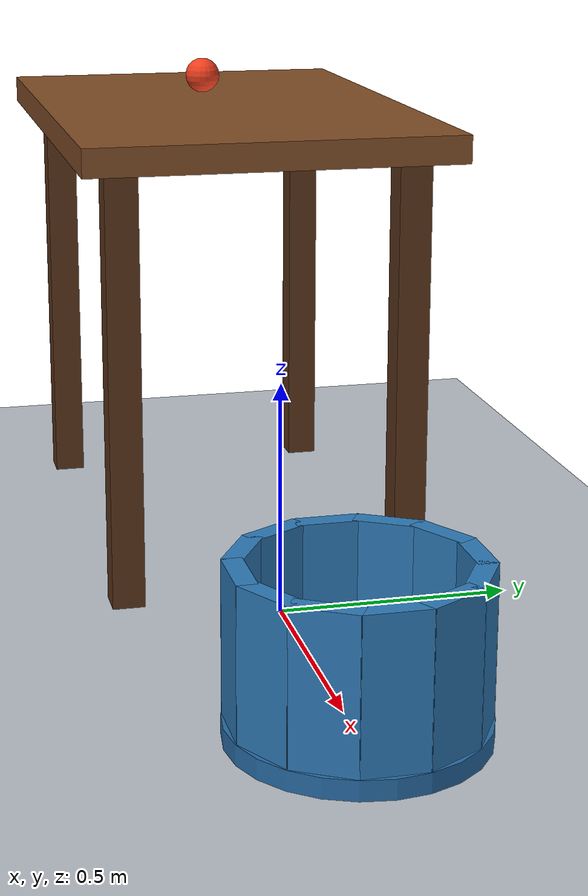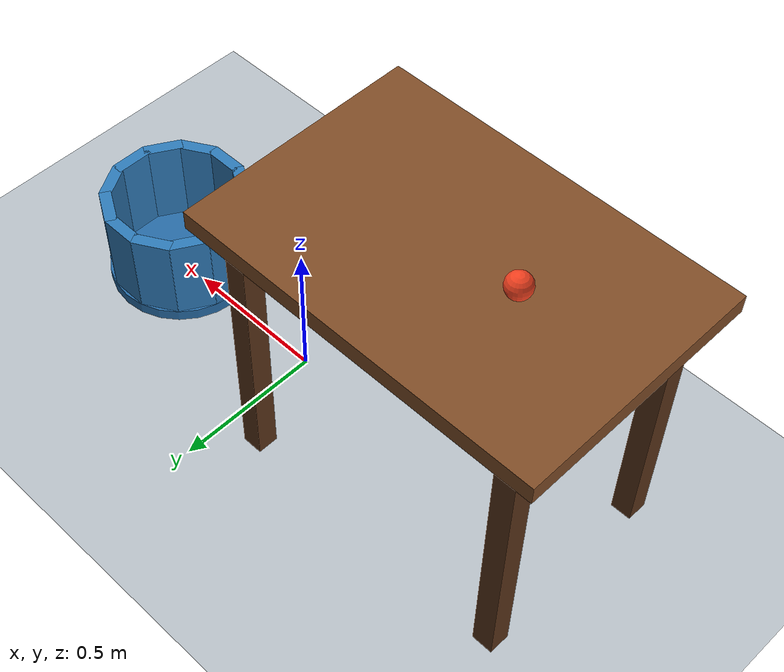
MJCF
<mujoco model="ball_table_bucket">
  <compiler angle="degree"/>
  <option timestep="0.002" gravity="0 0 -9.81" integrator="implicitfast" cone="elliptic" iterations="50"/>
  <statistic center="0 0 0.5" extent="2"/>

  <worldbody>
    <light name="overhead" pos="0 0 3" dir="0 0 -1" diffuse="0.8 0.8 0.8"/>
    <geom name="floor" type="plane" size="3 3 0.1" rgba="0.72 0.75 0.78 1" friction="0.8 0.01 0.005" condim="6"/>

    <!-- The tabletop ends at x = 0 and its upper surface is at z = 1. -->
    <body name="table">
      <geom name="table_top" type="box" pos="-0.6 0 0.97" size="0.6 0.4 0.03" rgba="0.50 0.30 0.15 1" friction="0.8 0.005 0.00005" condim="6" solref="0.01 1"/>
      <geom name="table_leg_1" type="box" pos="-1.08 -0.31 0.47" size="0.035 0.035 0.47" rgba="0.35 0.20 0.10 1"/>
      <geom name="table_leg_2" type="box" pos="-1.08 0.31 0.47" size="0.035 0.035 0.47" rgba="0.35 0.20 0.10 1"/>
      <geom name="table_leg_3" type="box" pos="-0.12 -0.31 0.47" size="0.035 0.035 0.47" rgba="0.35 0.20 0.10 1"/>
      <geom name="table_leg_4" type="box" pos="-0.12 0.31 0.47" size="0.035 0.035 0.47" rgba="0.35 0.20 0.10 1"/>
    </body>

    <!-- An open, watertight polygonal bucket centered 0.60 m beyond the edge. -->
    <body name="bucket" pos="0.6 0 0">
      <geom name="bucket_bottom" type="cylinder" pos="0 0 0.02" size="0.25 0.02" rgba="0.15 0.42 0.65 1" friction="0.9 0.02 0.01" condim="6" solref="0.01 1"/>
      <geom name="bucket_wall_01" type="box" pos="0.22 0 0.19" size="0.02 0.065 0.15" euler="0 0 0" rgba="0.18 0.48 0.72 1" friction="0.9 0.02 0.01" condim="6" solref="0.01 1"/>
      <geom name="bucket_wall_02" type="box" pos="0.190526 0.11 0.19" size="0.02 0.065 0.15" euler="0 0 30" rgba="0.18 0.48 0.72 1" friction="0.9 0.02 0.01" condim="6" solref="0.01 1"/>
      <geom name="bucket_wall_03" type="box" pos="0.11 0.190526 0.19" size="0.02 0.065 0.15" euler="0 0 60" rgba="0.18 0.48 0.72 1" friction="0.9 0.02 0.01" condim="6" solref="0.01 1"/>
      <geom name="bucket_wall_04" type="box" pos="0 0.22 0.19" size="0.02 0.065 0.15" euler="0 0 90" rgba="0.18 0.48 0.72 1" friction="0.9 0.02 0.01" condim="6" solref="0.01 1"/>
      <geom name="bucket_wall_05" type="box" pos="-0.11 0.190526 0.19" size="0.02 0.065 0.15" euler="0 0 120" rgba="0.18 0.48 0.72 1" friction="0.9 0.02 0.01" condim="6" solref="0.01 1"/>
      <geom name="bucket_wall_06" type="box" pos="-0.190526 0.11 0.19" size="0.02 0.065 0.15" euler="0 0 150" rgba="0.18 0.48 0.72 1" friction="0.9 0.02 0.01" condim="6" solref="0.01 1"/>
      <geom name="bucket_wall_07" type="box" pos="-0.22 0 0.19" size="0.02 0.065 0.15" euler="0 0 180" rgba="0.18 0.48 0.72 1" friction="0.9 0.02 0.01" condim="6" solref="0.01 1"/>
      <geom name="bucket_wall_08" type="box" pos="-0.190526 -0.11 0.19" size="0.02 0.065 0.15" euler="0 0 210" rgba="0.18 0.48 0.72 1" friction="0.9 0.02 0.01" condim="6" solref="0.01 1"/>
      <geom name="bucket_wall_09" type="box" pos="-0.11 -0.190526 0.19" size="0.02 0.065 0.15" euler="0 0 240" rgba="0.18 0.48 0.72 1" friction="0.9 0.02 0.01" condim="6" solref="0.01 1"/>
      <geom name="bucket_wall_10" type="box" pos="0 -0.22 0.19" size="0.02 0.065 0.15" euler="0 0 270" rgba="0.18 0.48 0.72 1" friction="0.9 0.02 0.01" condim="6" solref="0.01 1"/>
      <geom name="bucket_wall_11" type="box" pos="0.11 -0.190526 0.19" size="0.02 0.065 0.15" euler="0 0 300" rgba="0.18 0.48 0.72 1" friction="0.9 0.02 0.01" condim="6" solref="0.01 1"/>
      <geom name="bucket_wall_12" type="box" pos="0.190526 -0.11 0.19" size="0.02 0.065 0.15" euler="0 0 330" rgba="0.18 0.48 0.72 1" friction="0.9 0.02 0.01" condim="6" solref="0.01 1"/>
    </body>

    <body name="ball" pos="-0.8 0 1.04">
      <freejoint/>
      <geom name="ball" type="sphere" size="0.04" density="800" rgba="0.95 0.25 0.12 1" friction="0.8 0.005 0.00005" condim="6" solref="0.01 1"/>
    </body>
  </worldbody>

  <keyframe>
    <!-- Initial translation and rotation give rolling without slipping: v = radius * omega. -->
    <key name="start" qpos="-0.8 0 1.04 1 0 0 0" qvel="1.4 0 0 0 35 0"/>
  </keyframe>
</mujoco>
